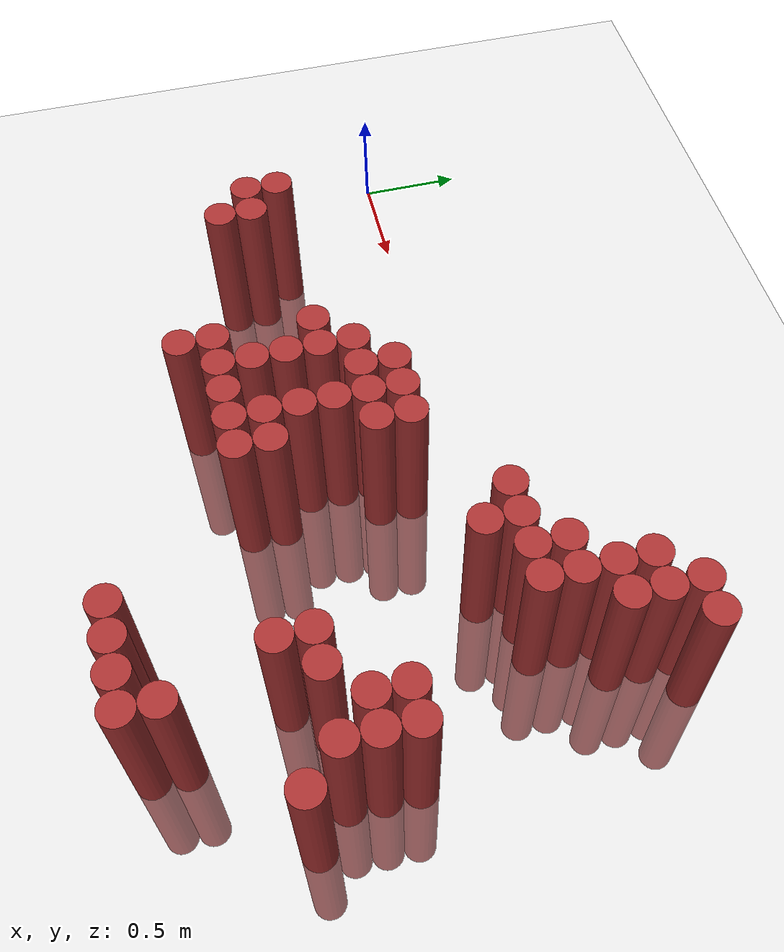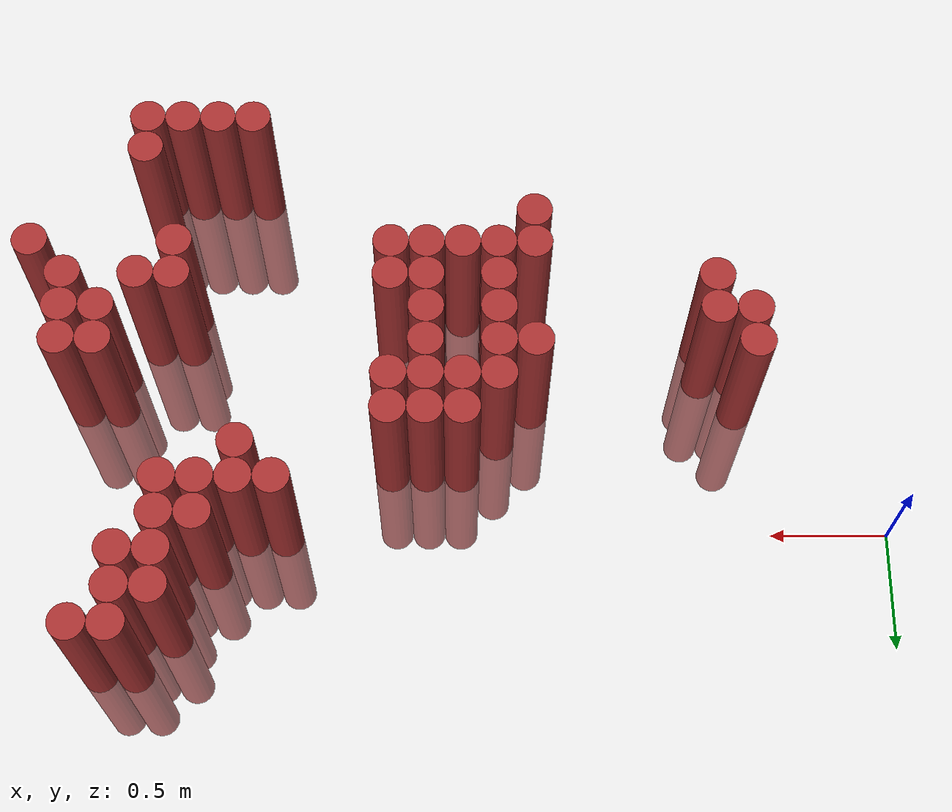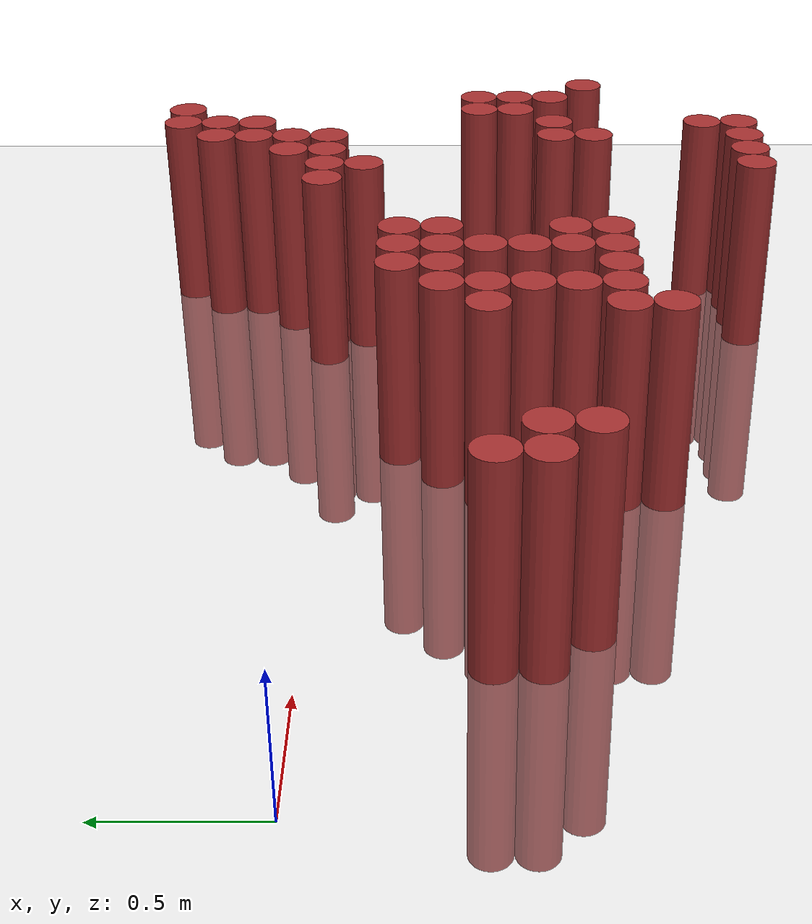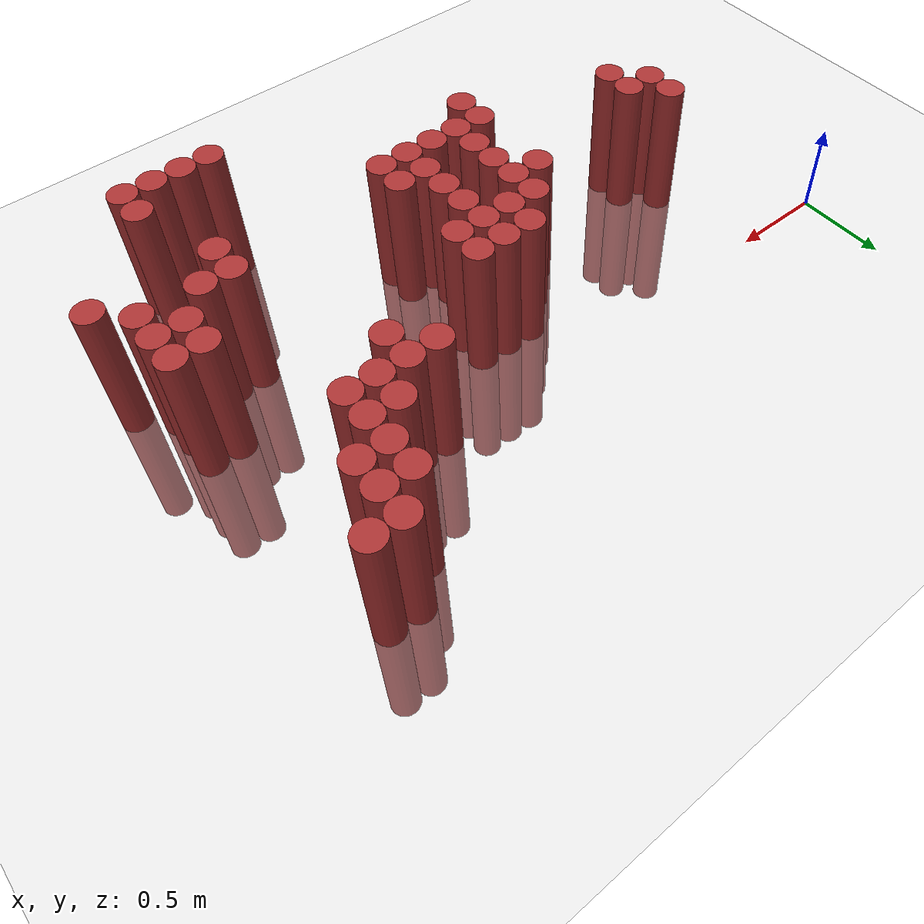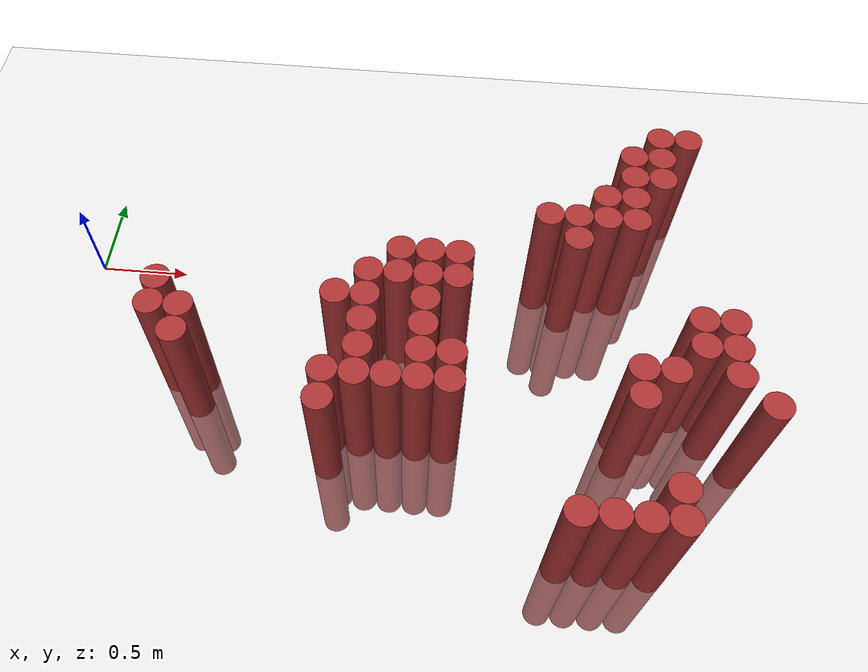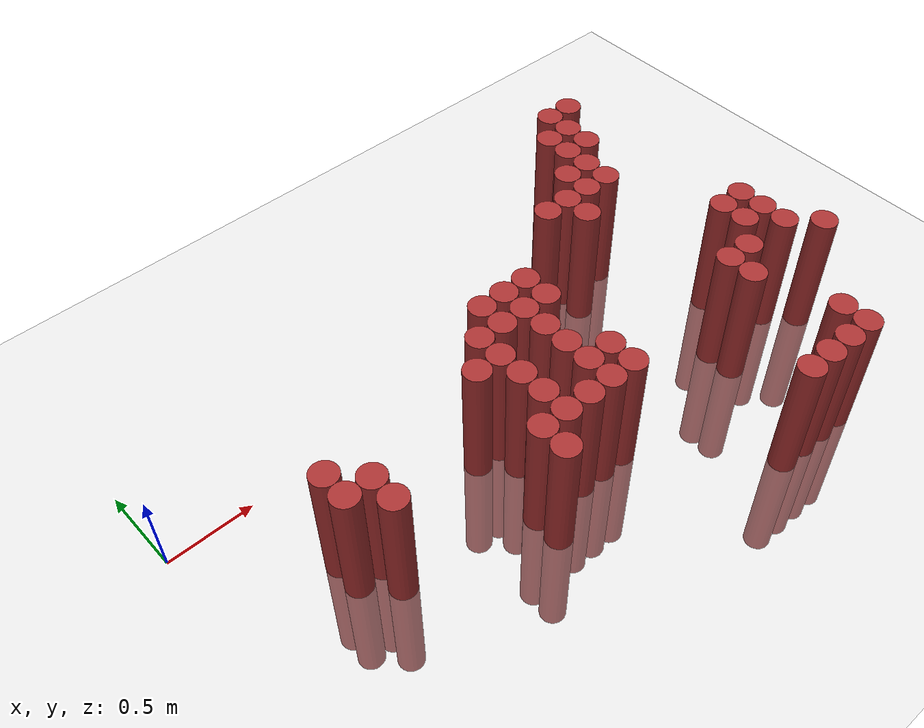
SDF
<sdf version="1.6">
 <world name="default">
  <model name="ground_plane">
   <static>1</static>
   <link name="link">
    <collision name="collision">
     <geometry><plane><normal>0 0 1</normal><size>100 100</size></plane></geometry>
     <surface><friction><ode><mu>100</mu><mu2>50</mu2></ode></friction></surface>
    </collision>
    <visual name="visual">
     <cast_shadows>0</cast_shadows>
     <geometry><plane><normal>0 0 1</normal><size>100 100</size></plane></geometry>
     <material>
      <script><uri>file://media/materials/scripts/gazebo.material</uri><name>Gazebo/Grey</name></script>
     </material>
    </visual>
   </link>
  </model>
  <model name="unit_cylinder_394">
   <static>1</static>
   <pose>0.625000 -0.725000 0.000000 0.000000 0.000000 0.000000</pose>
   <link name="link">
    <inertial>
     <mass>1</mass>
     <inertia><ixx>0.145833</ixx><ixy>0</ixy><ixz>0</ixz><iyy>0.145833</iyy><iyz>0</iyz><izz>0.125</izz></inertia>
    </inertial>
    <collision name="collision">
     <geometry><cylinder><radius>0.075000</radius><length>1.5</length></cylinder></geometry>
    </collision>
    <visual name="visual">
     <geometry><cylinder><radius>0.075000</radius><length>1.5</length></cylinder></geometry>
     <material>
      <ambient>0.648000 0.192000 0.192000 1</ambient>
      <diffuse>0.648000 0.192000 0.192000 1</diffuse>
     </material>
     <material>
      <script><name>Gazebo/Grey</name><uri>file://media/materials/scripts/gazebo.material</uri></script>
     </material>
    </visual>
   </link>
  </model>
  <model name="unit_cylinder_395">
   <static>1</static>
   <pose>0.625000 -0.575000 0.000000 0.000000 0.000000 0.000000</pose>
   <link name="link">
    <inertial>
     <mass>1</mass>
     <inertia><ixx>0.145833</ixx><ixy>0</ixy><ixz>0</ixz><iyy>0.145833</iyy><iyz>0</iyz><izz>0.125</izz></inertia>
    </inertial>
    <collision name="collision">
     <geometry><cylinder><radius>0.075000</radius><length>1.5</length></cylinder></geometry>
    </collision>
    <visual name="visual">
     <geometry><cylinder><radius>0.075000</radius><length>1.5</length></cylinder></geometry>
     <material>
      <ambient>0.648000 0.192000 0.192000 1</ambient>
      <diffuse>0.648000 0.192000 0.192000 1</diffuse>
     </material>
     <material>
      <script><name>Gazebo/Grey</name><uri>file://media/materials/scripts/gazebo.material</uri></script>
     </material>
    </visual>
   </link>
  </model>
  <model name="unit_cylinder_396">
   <static>1</static>
   <pose>0.775000 -0.875000 0.000000 0.000000 0.000000 0.000000</pose>
   <link name="link">
    <inertial>
     <mass>1</mass>
     <inertia><ixx>0.145833</ixx><ixy>0</ixy><ixz>0</ixz><iyy>0.145833</iyy><iyz>0</iyz><izz>0.125</izz></inertia>
    </inertial>
    <collision name="collision">
     <geometry><cylinder><radius>0.075000</radius><length>1.5</length></cylinder></geometry>
    </collision>
    <visual name="visual">
     <geometry><cylinder><radius>0.075000</radius><length>1.5</length></cylinder></geometry>
     <material>
      <ambient>0.648000 0.192000 0.192000 1</ambient>
      <diffuse>0.648000 0.192000 0.192000 1</diffuse>
     </material>
     <material>
      <script><name>Gazebo/Grey</name><uri>file://media/materials/scripts/gazebo.material</uri></script>
     </material>
    </visual>
   </link>
  </model>
  <model name="unit_cylinder_397">
   <static>1</static>
   <pose>0.775000 -0.725000 0.000000 0.000000 0.000000 0.000000</pose>
   <link name="link">
    <inertial>
     <mass>1</mass>
     <inertia><ixx>0.145833</ixx><ixy>0</ixy><ixz>0</ixz><iyy>0.145833</iyy><iyz>0</iyz><izz>0.125</izz></inertia>
    </inertial>
    <collision name="collision">
     <geometry><cylinder><radius>0.075000</radius><length>1.5</length></cylinder></geometry>
    </collision>
    <visual name="visual">
     <geometry><cylinder><radius>0.075000</radius><length>1.5</length></cylinder></geometry>
     <material>
      <ambient>0.648000 0.192000 0.192000 1</ambient>
      <diffuse>0.648000 0.192000 0.192000 1</diffuse>
     </material>
     <material>
      <script><name>Gazebo/Grey</name><uri>file://media/materials/scripts/gazebo.material</uri></script>
     </material>
    </visual>
   </link>
  </model>
  <model name="unit_cylinder_422">
   <static>1</static>
   <pose>1.525000 -1.175000 0.000000 0.000000 0.000000 0.000000</pose>
   <link name="link">
    <inertial>
     <mass>1</mass>
     <inertia><ixx>0.145833</ixx><ixy>0</ixy><ixz>0</ixz><iyy>0.145833</iyy><iyz>0</iyz><izz>0.125</izz></inertia>
    </inertial>
    <collision name="collision">
     <geometry><cylinder><radius>0.075000</radius><length>1.5</length></cylinder></geometry>
    </collision>
    <visual name="visual">
     <geometry><cylinder><radius>0.075000</radius><length>1.5</length></cylinder></geometry>
     <material>
      <ambient>0.648000 0.192000 0.192000 1</ambient>
      <diffuse>0.648000 0.192000 0.192000 1</diffuse>
     </material>
     <material>
      <script><name>Gazebo/Grey</name><uri>file://media/materials/scripts/gazebo.material</uri></script>
     </material>
    </visual>
   </link>
  </model>
  <model name="unit_cylinder_423">
   <static>1</static>
   <pose>1.525000 -1.025000 0.000000 0.000000 0.000000 0.000000</pose>
   <link name="link">
    <inertial>
     <mass>1</mass>
     <inertia><ixx>0.145833</ixx><ixy>0</ixy><ixz>0</ixz><iyy>0.145833</iyy><iyz>0</iyz><izz>0.125</izz></inertia>
    </inertial>
    <collision name="collision">
     <geometry><cylinder><radius>0.075000</radius><length>1.5</length></cylinder></geometry>
    </collision>
    <visual name="visual">
     <geometry><cylinder><radius>0.075000</radius><length>1.5</length></cylinder></geometry>
     <material>
      <ambient>0.648000 0.192000 0.192000 1</ambient>
      <diffuse>0.648000 0.192000 0.192000 1</diffuse>
     </material>
     <material>
      <script><name>Gazebo/Grey</name><uri>file://media/materials/scripts/gazebo.material</uri></script>
     </material>
    </visual>
   </link>
  </model>
  <model name="unit_cylinder_424">
   <static>1</static>
   <pose>1.525000 -0.575000 0.000000 0.000000 0.000000 0.000000</pose>
   <link name="link">
    <inertial>
     <mass>1</mass>
     <inertia><ixx>0.145833</ixx><ixy>0</ixy><ixz>0</ixz><iyy>0.145833</iyy><iyz>0</iyz><izz>0.125</izz></inertia>
    </inertial>
    <collision name="collision">
     <geometry><cylinder><radius>0.075000</radius><length>1.5</length></cylinder></geometry>
    </collision>
    <visual name="visual">
     <geometry><cylinder><radius>0.075000</radius><length>1.5</length></cylinder></geometry>
     <material>
      <ambient>0.648000 0.192000 0.192000 1</ambient>
      <diffuse>0.648000 0.192000 0.192000 1</diffuse>
     </material>
     <material>
      <script><name>Gazebo/Grey</name><uri>file://media/materials/scripts/gazebo.material</uri></script>
     </material>
    </visual>
   </link>
  </model>
  <model name="unit_cylinder_427">
   <static>1</static>
   <pose>1.675000 -1.025000 0.000000 0.000000 0.000000 0.000000</pose>
   <link name="link">
    <inertial>
     <mass>1</mass>
     <inertia><ixx>0.145833</ixx><ixy>0</ixy><ixz>0</ixz><iyy>0.145833</iyy><iyz>0</iyz><izz>0.125</izz></inertia>
    </inertial>
    <collision name="collision">
     <geometry><cylinder><radius>0.075000</radius><length>1.5</length></cylinder></geometry>
    </collision>
    <visual name="visual">
     <geometry><cylinder><radius>0.075000</radius><length>1.5</length></cylinder></geometry>
     <material>
      <ambient>0.648000 0.192000 0.192000 1</ambient>
      <diffuse>0.648000 0.192000 0.192000 1</diffuse>
     </material>
     <material>
      <script><name>Gazebo/Grey</name><uri>file://media/materials/scripts/gazebo.material</uri></script>
     </material>
    </visual>
   </link>
  </model>
  <model name="unit_cylinder_428">
   <static>1</static>
   <pose>1.675000 -0.875000 0.000000 0.000000 0.000000 0.000000</pose>
   <link name="link">
    <inertial>
     <mass>1</mass>
     <inertia><ixx>0.145833</ixx><ixy>0</ixy><ixz>0</ixz><iyy>0.145833</iyy><iyz>0</iyz><izz>0.125</izz></inertia>
    </inertial>
    <collision name="collision">
     <geometry><cylinder><radius>0.075000</radius><length>1.5</length></cylinder></geometry>
    </collision>
    <visual name="visual">
     <geometry><cylinder><radius>0.075000</radius><length>1.5</length></cylinder></geometry>
     <material>
      <ambient>0.648000 0.192000 0.192000 1</ambient>
      <diffuse>0.648000 0.192000 0.192000 1</diffuse>
     </material>
     <material>
      <script><name>Gazebo/Grey</name><uri>file://media/materials/scripts/gazebo.material</uri></script>
     </material>
    </visual>
   </link>
  </model>
  <model name="unit_cylinder_429">
   <static>1</static>
   <pose>1.675000 -0.725000 0.000000 0.000000 0.000000 0.000000</pose>
   <link name="link">
    <inertial>
     <mass>1</mass>
     <inertia><ixx>0.145833</ixx><ixy>0</ixy><ixz>0</ixz><iyy>0.145833</iyy><iyz>0</iyz><izz>0.125</izz></inertia>
    </inertial>
    <collision name="collision">
     <geometry><cylinder><radius>0.075000</radius><length>1.5</length></cylinder></geometry>
    </collision>
    <visual name="visual">
     <geometry><cylinder><radius>0.075000</radius><length>1.5</length></cylinder></geometry>
     <material>
      <ambient>0.648000 0.192000 0.192000 1</ambient>
      <diffuse>0.648000 0.192000 0.192000 1</diffuse>
     </material>
     <material>
      <script><name>Gazebo/Grey</name><uri>file://media/materials/scripts/gazebo.material</uri></script>
     </material>
    </visual>
   </link>
  </model>
  <model name="unit_cylinder_430">
   <static>1</static>
   <pose>1.675000 -0.575000 0.000000 0.000000 0.000000 0.000000</pose>
   <link name="link">
    <inertial>
     <mass>1</mass>
     <inertia><ixx>0.145833</ixx><ixy>0</ixy><ixz>0</ixz><iyy>0.145833</iyy><iyz>0</iyz><izz>0.125</izz></inertia>
    </inertial>
    <collision name="collision">
     <geometry><cylinder><radius>0.075000</radius><length>1.5</length></cylinder></geometry>
    </collision>
    <visual name="visual">
     <geometry><cylinder><radius>0.075000</radius><length>1.5</length></cylinder></geometry>
     <material>
      <ambient>0.648000 0.192000 0.192000 1</ambient>
      <diffuse>0.648000 0.192000 0.192000 1</diffuse>
     </material>
     <material>
      <script><name>Gazebo/Grey</name><uri>file://media/materials/scripts/gazebo.material</uri></script>
     </material>
    </visual>
   </link>
  </model>
  <model name="unit_cylinder_431">
   <static>1</static>
   <pose>1.675000 -0.425000 0.000000 0.000000 0.000000 0.000000</pose>
   <link name="link">
    <inertial>
     <mass>1</mass>
     <inertia><ixx>0.145833</ixx><ixy>0</ixy><ixz>0</ixz><iyy>0.145833</iyy><iyz>0</iyz><izz>0.125</izz></inertia>
    </inertial>
    <collision name="collision">
     <geometry><cylinder><radius>0.075000</radius><length>1.5</length></cylinder></geometry>
    </collision>
    <visual name="visual">
     <geometry><cylinder><radius>0.075000</radius><length>1.5</length></cylinder></geometry>
     <material>
      <ambient>0.648000 0.192000 0.192000 1</ambient>
      <diffuse>0.648000 0.192000 0.192000 1</diffuse>
     </material>
     <material>
      <script><name>Gazebo/Grey</name><uri>file://media/materials/scripts/gazebo.material</uri></script>
     </material>
    </visual>
   </link>
  </model>
  <model name="unit_cylinder_433">
   <static>1</static>
   <pose>1.825000 -1.025000 0.000000 0.000000 0.000000 0.000000</pose>
   <link name="link">
    <inertial>
     <mass>1</mass>
     <inertia><ixx>0.145833</ixx><ixy>0</ixy><ixz>0</ixz><iyy>0.145833</iyy><iyz>0</iyz><izz>0.125</izz></inertia>
    </inertial>
    <collision name="collision">
     <geometry><cylinder><radius>0.075000</radius><length>1.5</length></cylinder></geometry>
    </collision>
    <visual name="visual">
     <geometry><cylinder><radius>0.075000</radius><length>1.5</length></cylinder></geometry>
     <material>
      <ambient>0.648000 0.192000 0.192000 1</ambient>
      <diffuse>0.648000 0.192000 0.192000 1</diffuse>
     </material>
     <material>
      <script><name>Gazebo/Grey</name><uri>file://media/materials/scripts/gazebo.material</uri></script>
     </material>
    </visual>
   </link>
  </model>
  <model name="unit_cylinder_434">
   <static>1</static>
   <pose>1.825000 -0.425000 0.000000 0.000000 0.000000 0.000000</pose>
   <link name="link">
    <inertial>
     <mass>1</mass>
     <inertia><ixx>0.145833</ixx><ixy>0</ixy><ixz>0</ixz><iyy>0.145833</iyy><iyz>0</iyz><izz>0.125</izz></inertia>
    </inertial>
    <collision name="collision">
     <geometry><cylinder><radius>0.075000</radius><length>1.5</length></cylinder></geometry>
    </collision>
    <visual name="visual">
     <geometry><cylinder><radius>0.075000</radius><length>1.5</length></cylinder></geometry>
     <material>
      <ambient>0.648000 0.192000 0.192000 1</ambient>
      <diffuse>0.648000 0.192000 0.192000 1</diffuse>
     </material>
     <material>
      <script><name>Gazebo/Grey</name><uri>file://media/materials/scripts/gazebo.material</uri></script>
     </material>
    </visual>
   </link>
  </model>
  <model name="unit_cylinder_435">
   <static>1</static>
   <pose>1.825000 -0.275000 0.000000 0.000000 0.000000 0.000000</pose>
   <link name="link">
    <inertial>
     <mass>1</mass>
     <inertia><ixx>0.145833</ixx><ixy>0</ixy><ixz>0</ixz><iyy>0.145833</iyy><iyz>0</iyz><izz>0.125</izz></inertia>
    </inertial>
    <collision name="collision">
     <geometry><cylinder><radius>0.075000</radius><length>1.5</length></cylinder></geometry>
    </collision>
    <visual name="visual">
     <geometry><cylinder><radius>0.075000</radius><length>1.5</length></cylinder></geometry>
     <material>
      <ambient>0.648000 0.192000 0.192000 1</ambient>
      <diffuse>0.648000 0.192000 0.192000 1</diffuse>
     </material>
     <material>
      <script><name>Gazebo/Grey</name><uri>file://media/materials/scripts/gazebo.material</uri></script>
     </material>
    </visual>
   </link>
  </model>
  <model name="unit_cylinder_438">
   <static>1</static>
   <pose>1.975000 -1.025000 0.000000 0.000000 0.000000 0.000000</pose>
   <link name="link">
    <inertial>
     <mass>1</mass>
     <inertia><ixx>0.145833</ixx><ixy>0</ixy><ixz>0</ixz><iyy>0.145833</iyy><iyz>0</iyz><izz>0.125</izz></inertia>
    </inertial>
    <collision name="collision">
     <geometry><cylinder><radius>0.075000</radius><length>1.5</length></cylinder></geometry>
    </collision>
    <visual name="visual">
     <geometry><cylinder><radius>0.075000</radius><length>1.5</length></cylinder></geometry>
     <material>
      <ambient>0.648000 0.192000 0.192000 1</ambient>
      <diffuse>0.648000 0.192000 0.192000 1</diffuse>
     </material>
     <material>
      <script><name>Gazebo/Grey</name><uri>file://media/materials/scripts/gazebo.material</uri></script>
     </material>
    </visual>
   </link>
  </model>
  <model name="unit_cylinder_439">
   <static>1</static>
   <pose>1.975000 -0.875000 0.000000 0.000000 0.000000 0.000000</pose>
   <link name="link">
    <inertial>
     <mass>1</mass>
     <inertia><ixx>0.145833</ixx><ixy>0</ixy><ixz>0</ixz><iyy>0.145833</iyy><iyz>0</iyz><izz>0.125</izz></inertia>
    </inertial>
    <collision name="collision">
     <geometry><cylinder><radius>0.075000</radius><length>1.5</length></cylinder></geometry>
    </collision>
    <visual name="visual">
     <geometry><cylinder><radius>0.075000</radius><length>1.5</length></cylinder></geometry>
     <material>
      <ambient>0.648000 0.192000 0.192000 1</ambient>
      <diffuse>0.648000 0.192000 0.192000 1</diffuse>
     </material>
     <material>
      <script><name>Gazebo/Grey</name><uri>file://media/materials/scripts/gazebo.material</uri></script>
     </material>
    </visual>
   </link>
  </model>
  <model name="unit_cylinder_440">
   <static>1</static>
   <pose>1.975000 -0.725000 0.000000 0.000000 0.000000 0.000000</pose>
   <link name="link">
    <inertial>
     <mass>1</mass>
     <inertia><ixx>0.145833</ixx><ixy>0</ixy><ixz>0</ixz><iyy>0.145833</iyy><iyz>0</iyz><izz>0.125</izz></inertia>
    </inertial>
    <collision name="collision">
     <geometry><cylinder><radius>0.075000</radius><length>1.5</length></cylinder></geometry>
    </collision>
    <visual name="visual">
     <geometry><cylinder><radius>0.075000</radius><length>1.5</length></cylinder></geometry>
     <material>
      <ambient>0.648000 0.192000 0.192000 1</ambient>
      <diffuse>0.648000 0.192000 0.192000 1</diffuse>
     </material>
     <material>
      <script><name>Gazebo/Grey</name><uri>file://media/materials/scripts/gazebo.material</uri></script>
     </material>
    </visual>
   </link>
  </model>
  <model name="unit_cylinder_441">
   <static>1</static>
   <pose>1.975000 -0.575000 0.000000 0.000000 0.000000 0.000000</pose>
   <link name="link">
    <inertial>
     <mass>1</mass>
     <inertia><ixx>0.145833</ixx><ixy>0</ixy><ixz>0</ixz><iyy>0.145833</iyy><iyz>0</iyz><izz>0.125</izz></inertia>
    </inertial>
    <collision name="collision">
     <geometry><cylinder><radius>0.075000</radius><length>1.5</length></cylinder></geometry>
    </collision>
    <visual name="visual">
     <geometry><cylinder><radius>0.075000</radius><length>1.5</length></cylinder></geometry>
     <material>
      <ambient>0.648000 0.192000 0.192000 1</ambient>
      <diffuse>0.648000 0.192000 0.192000 1</diffuse>
     </material>
     <material>
      <script><name>Gazebo/Grey</name><uri>file://media/materials/scripts/gazebo.material</uri></script>
     </material>
    </visual>
   </link>
  </model>
  <model name="unit_cylinder_442">
   <static>1</static>
   <pose>1.975000 -0.425000 0.000000 0.000000 0.000000 0.000000</pose>
   <link name="link">
    <inertial>
     <mass>1</mass>
     <inertia><ixx>0.145833</ixx><ixy>0</ixy><ixz>0</ixz><iyy>0.145833</iyy><iyz>0</iyz><izz>0.125</izz></inertia>
    </inertial>
    <collision name="collision">
     <geometry><cylinder><radius>0.075000</radius><length>1.5</length></cylinder></geometry>
    </collision>
    <visual name="visual">
     <geometry><cylinder><radius>0.075000</radius><length>1.5</length></cylinder></geometry>
     <material>
      <ambient>0.648000 0.192000 0.192000 1</ambient>
      <diffuse>0.648000 0.192000 0.192000 1</diffuse>
     </material>
     <material>
      <script><name>Gazebo/Grey</name><uri>file://media/materials/scripts/gazebo.material</uri></script>
     </material>
    </visual>
   </link>
  </model>
  <model name="unit_cylinder_443">
   <static>1</static>
   <pose>1.975000 -0.275000 0.000000 0.000000 0.000000 0.000000</pose>
   <link name="link">
    <inertial>
     <mass>1</mass>
     <inertia><ixx>0.145833</ixx><ixy>0</ixy><ixz>0</ixz><iyy>0.145833</iyy><iyz>0</iyz><izz>0.125</izz></inertia>
    </inertial>
    <collision name="collision">
     <geometry><cylinder><radius>0.075000</radius><length>1.5</length></cylinder></geometry>
    </collision>
    <visual name="visual">
     <geometry><cylinder><radius>0.075000</radius><length>1.5</length></cylinder></geometry>
     <material>
      <ambient>0.648000 0.192000 0.192000 1</ambient>
      <diffuse>0.648000 0.192000 0.192000 1</diffuse>
     </material>
     <material>
      <script><name>Gazebo/Grey</name><uri>file://media/materials/scripts/gazebo.material</uri></script>
     </material>
    </visual>
   </link>
  </model>
  <model name="unit_cylinder_448">
   <static>1</static>
   <pose>2.125000 -1.025000 0.000000 0.000000 0.000000 0.000000</pose>
   <link name="link">
    <inertial>
     <mass>1</mass>
     <inertia><ixx>0.145833</ixx><ixy>0</ixy><ixz>0</ixz><iyy>0.145833</iyy><iyz>0</iyz><izz>0.125</izz></inertia>
    </inertial>
    <collision name="collision">
     <geometry><cylinder><radius>0.075000</radius><length>1.5</length></cylinder></geometry>
    </collision>
    <visual name="visual">
     <geometry><cylinder><radius>0.075000</radius><length>1.5</length></cylinder></geometry>
     <material>
      <ambient>0.648000 0.192000 0.192000 1</ambient>
      <diffuse>0.648000 0.192000 0.192000 1</diffuse>
     </material>
     <material>
      <script><name>Gazebo/Grey</name><uri>file://media/materials/scripts/gazebo.material</uri></script>
     </material>
    </visual>
   </link>
  </model>
  <model name="unit_cylinder_449">
   <static>1</static>
   <pose>2.125000 -0.875000 0.000000 0.000000 0.000000 0.000000</pose>
   <link name="link">
    <inertial>
     <mass>1</mass>
     <inertia><ixx>0.145833</ixx><ixy>0</ixy><ixz>0</ixz><iyy>0.145833</iyy><iyz>0</iyz><izz>0.125</izz></inertia>
    </inertial>
    <collision name="collision">
     <geometry><cylinder><radius>0.075000</radius><length>1.5</length></cylinder></geometry>
    </collision>
    <visual name="visual">
     <geometry><cylinder><radius>0.075000</radius><length>1.5</length></cylinder></geometry>
     <material>
      <ambient>0.648000 0.192000 0.192000 1</ambient>
      <diffuse>0.648000 0.192000 0.192000 1</diffuse>
     </material>
     <material>
      <script><name>Gazebo/Grey</name><uri>file://media/materials/scripts/gazebo.material</uri></script>
     </material>
    </visual>
   </link>
  </model>
  <model name="unit_cylinder_450">
   <static>1</static>
   <pose>2.125000 -0.425000 0.000000 0.000000 0.000000 0.000000</pose>
   <link name="link">
    <inertial>
     <mass>1</mass>
     <inertia><ixx>0.145833</ixx><ixy>0</ixy><ixz>0</ixz><iyy>0.145833</iyy><iyz>0</iyz><izz>0.125</izz></inertia>
    </inertial>
    <collision name="collision">
     <geometry><cylinder><radius>0.075000</radius><length>1.5</length></cylinder></geometry>
    </collision>
    <visual name="visual">
     <geometry><cylinder><radius>0.075000</radius><length>1.5</length></cylinder></geometry>
     <material>
      <ambient>0.648000 0.192000 0.192000 1</ambient>
      <diffuse>0.648000 0.192000 0.192000 1</diffuse>
     </material>
     <material>
      <script><name>Gazebo/Grey</name><uri>file://media/materials/scripts/gazebo.material</uri></script>
     </material>
    </visual>
   </link>
  </model>
  <model name="unit_cylinder_451">
   <static>1</static>
   <pose>2.125000 -0.275000 0.000000 0.000000 0.000000 0.000000</pose>
   <link name="link">
    <inertial>
     <mass>1</mass>
     <inertia><ixx>0.145833</ixx><ixy>0</ixy><ixz>0</ixz><iyy>0.145833</iyy><iyz>0</iyz><izz>0.125</izz></inertia>
    </inertial>
    <collision name="collision">
     <geometry><cylinder><radius>0.075000</radius><length>1.5</length></cylinder></geometry>
    </collision>
    <visual name="visual">
     <geometry><cylinder><radius>0.075000</radius><length>1.5</length></cylinder></geometry>
     <material>
      <ambient>0.648000 0.192000 0.192000 1</ambient>
      <diffuse>0.648000 0.192000 0.192000 1</diffuse>
     </material>
     <material>
      <script><name>Gazebo/Grey</name><uri>file://media/materials/scripts/gazebo.material</uri></script>
     </material>
    </visual>
   </link>
  </model>
  <model name="unit_cylinder_464">
   <static>1</static>
   <pose>2.575000 0.025000 0.000000 0.000000 0.000000 0.000000</pose>
   <link name="link">
    <inertial>
     <mass>1</mass>
     <inertia><ixx>0.145833</ixx><ixy>0</ixy><ixz>0</ixz><iyy>0.145833</iyy><iyz>0</iyz><izz>0.125</izz></inertia>
    </inertial>
    <collision name="collision">
     <geometry><cylinder><radius>0.075000</radius><length>1.5</length></cylinder></geometry>
    </collision>
    <visual name="visual">
     <geometry><cylinder><radius>0.075000</radius><length>1.5</length></cylinder></geometry>
     <material>
      <ambient>0.648000 0.192000 0.192000 1</ambient>
      <diffuse>0.648000 0.192000 0.192000 1</diffuse>
     </material>
     <material>
      <script><name>Gazebo/Grey</name><uri>file://media/materials/scripts/gazebo.material</uri></script>
     </material>
    </visual>
   </link>
  </model>
  <model name="unit_cylinder_473">
   <static>1</static>
   <pose>2.725000 -1.625000 0.000000 0.000000 0.000000 0.000000</pose>
   <link name="link">
    <inertial>
     <mass>1</mass>
     <inertia><ixx>0.145833</ixx><ixy>0</ixy><ixz>0</ixz><iyy>0.145833</iyy><iyz>0</iyz><izz>0.125</izz></inertia>
    </inertial>
    <collision name="collision">
     <geometry><cylinder><radius>0.075000</radius><length>1.5</length></cylinder></geometry>
    </collision>
    <visual name="visual">
     <geometry><cylinder><radius>0.075000</radius><length>1.5</length></cylinder></geometry>
     <material>
      <ambient>0.648000 0.192000 0.192000 1</ambient>
      <diffuse>0.648000 0.192000 0.192000 1</diffuse>
     </material>
     <material>
      <script><name>Gazebo/Grey</name><uri>file://media/materials/scripts/gazebo.material</uri></script>
     </material>
    </visual>
   </link>
  </model>
  <model name="unit_cylinder_474">
   <static>1</static>
   <pose>2.725000 -0.125000 0.000000 0.000000 0.000000 0.000000</pose>
   <link name="link">
    <inertial>
     <mass>1</mass>
     <inertia><ixx>0.145833</ixx><ixy>0</ixy><ixz>0</ixz><iyy>0.145833</iyy><iyz>0</iyz><izz>0.125</izz></inertia>
    </inertial>
    <collision name="collision">
     <geometry><cylinder><radius>0.075000</radius><length>1.5</length></cylinder></geometry>
    </collision>
    <visual name="visual">
     <geometry><cylinder><radius>0.075000</radius><length>1.5</length></cylinder></geometry>
     <material>
      <ambient>0.648000 0.192000 0.192000 1</ambient>
      <diffuse>0.648000 0.192000 0.192000 1</diffuse>
     </material>
     <material>
      <script><name>Gazebo/Grey</name><uri>file://media/materials/scripts/gazebo.material</uri></script>
     </material>
    </visual>
   </link>
  </model>
  <model name="unit_cylinder_475">
   <static>1</static>
   <pose>2.725000 0.025000 0.000000 0.000000 0.000000 0.000000</pose>
   <link name="link">
    <inertial>
     <mass>1</mass>
     <inertia><ixx>0.145833</ixx><ixy>0</ixy><ixz>0</ixz><iyy>0.145833</iyy><iyz>0</iyz><izz>0.125</izz></inertia>
    </inertial>
    <collision name="collision">
     <geometry><cylinder><radius>0.075000</radius><length>1.5</length></cylinder></geometry>
    </collision>
    <visual name="visual">
     <geometry><cylinder><radius>0.075000</radius><length>1.5</length></cylinder></geometry>
     <material>
      <ambient>0.648000 0.192000 0.192000 1</ambient>
      <diffuse>0.648000 0.192000 0.192000 1</diffuse>
     </material>
     <material>
      <script><name>Gazebo/Grey</name><uri>file://media/materials/scripts/gazebo.material</uri></script>
     </material>
    </visual>
   </link>
  </model>
  <model name="unit_cylinder_481">
   <static>1</static>
   <pose>2.875000 -1.625000 0.000000 0.000000 0.000000 0.000000</pose>
   <link name="link">
    <inertial>
     <mass>1</mass>
     <inertia><ixx>0.145833</ixx><ixy>0</ixy><ixz>0</ixz><iyy>0.145833</iyy><iyz>0</iyz><izz>0.125</izz></inertia>
    </inertial>
    <collision name="collision">
     <geometry><cylinder><radius>0.075000</radius><length>1.5</length></cylinder></geometry>
    </collision>
    <visual name="visual">
     <geometry><cylinder><radius>0.075000</radius><length>1.5</length></cylinder></geometry>
     <material>
      <ambient>0.648000 0.192000 0.192000 1</ambient>
      <diffuse>0.648000 0.192000 0.192000 1</diffuse>
     </material>
     <material>
      <script><name>Gazebo/Grey</name><uri>file://media/materials/scripts/gazebo.material</uri></script>
     </material>
    </visual>
   </link>
  </model>
  <model name="unit_cylinder_482">
   <static>1</static>
   <pose>2.875000 0.025000 0.000000 0.000000 0.000000 0.000000</pose>
   <link name="link">
    <inertial>
     <mass>1</mass>
     <inertia><ixx>0.145833</ixx><ixy>0</ixy><ixz>0</ixz><iyy>0.145833</iyy><iyz>0</iyz><izz>0.125</izz></inertia>
    </inertial>
    <collision name="collision">
     <geometry><cylinder><radius>0.075000</radius><length>1.5</length></cylinder></geometry>
    </collision>
    <visual name="visual">
     <geometry><cylinder><radius>0.075000</radius><length>1.5</length></cylinder></geometry>
     <material>
      <ambient>0.648000 0.192000 0.192000 1</ambient>
      <diffuse>0.648000 0.192000 0.192000 1</diffuse>
     </material>
     <material>
      <script><name>Gazebo/Grey</name><uri>file://media/materials/scripts/gazebo.material</uri></script>
     </material>
    </visual>
   </link>
  </model>
  <model name="unit_cylinder_483">
   <static>1</static>
   <pose>2.875000 0.175000 0.000000 0.000000 0.000000 0.000000</pose>
   <link name="link">
    <inertial>
     <mass>1</mass>
     <inertia><ixx>0.145833</ixx><ixy>0</ixy><ixz>0</ixz><iyy>0.145833</iyy><iyz>0</iyz><izz>0.125</izz></inertia>
    </inertial>
    <collision name="collision">
     <geometry><cylinder><radius>0.075000</radius><length>1.5</length></cylinder></geometry>
    </collision>
    <visual name="visual">
     <geometry><cylinder><radius>0.075000</radius><length>1.5</length></cylinder></geometry>
     <material>
      <ambient>0.648000 0.192000 0.192000 1</ambient>
      <diffuse>0.648000 0.192000 0.192000 1</diffuse>
     </material>
     <material>
      <script><name>Gazebo/Grey</name><uri>file://media/materials/scripts/gazebo.material</uri></script>
     </material>
    </visual>
   </link>
  </model>
  <model name="unit_cylinder_495">
   <static>1</static>
   <pose>3.025000 -1.625000 0.000000 0.000000 0.000000 0.000000</pose>
   <link name="link">
    <inertial>
     <mass>1</mass>
     <inertia><ixx>0.145833</ixx><ixy>0</ixy><ixz>0</ixz><iyy>0.145833</iyy><iyz>0</iyz><izz>0.125</izz></inertia>
    </inertial>
    <collision name="collision">
     <geometry><cylinder><radius>0.075000</radius><length>1.5</length></cylinder></geometry>
    </collision>
    <visual name="visual">
     <geometry><cylinder><radius>0.075000</radius><length>1.5</length></cylinder></geometry>
     <material>
      <ambient>0.648000 0.192000 0.192000 1</ambient>
      <diffuse>0.648000 0.192000 0.192000 1</diffuse>
     </material>
     <material>
      <script><name>Gazebo/Grey</name><uri>file://media/materials/scripts/gazebo.material</uri></script>
     </material>
    </visual>
   </link>
  </model>
  <model name="unit_cylinder_496">
   <static>1</static>
   <pose>3.025000 -1.025000 0.000000 0.000000 0.000000 0.000000</pose>
   <link name="link">
    <inertial>
     <mass>1</mass>
     <inertia><ixx>0.145833</ixx><ixy>0</ixy><ixz>0</ixz><iyy>0.145833</iyy><iyz>0</iyz><izz>0.125</izz></inertia>
    </inertial>
    <collision name="collision">
     <geometry><cylinder><radius>0.075000</radius><length>1.5</length></cylinder></geometry>
    </collision>
    <visual name="visual">
     <geometry><cylinder><radius>0.075000</radius><length>1.5</length></cylinder></geometry>
     <material>
      <ambient>0.648000 0.192000 0.192000 1</ambient>
      <diffuse>0.648000 0.192000 0.192000 1</diffuse>
     </material>
     <material>
      <script><name>Gazebo/Grey</name><uri>file://media/materials/scripts/gazebo.material</uri></script>
     </material>
    </visual>
   </link>
  </model>
  <model name="unit_cylinder_497">
   <static>1</static>
   <pose>3.025000 -0.875000 0.000000 0.000000 0.000000 0.000000</pose>
   <link name="link">
    <inertial>
     <mass>1</mass>
     <inertia><ixx>0.145833</ixx><ixy>0</ixy><ixz>0</ixz><iyy>0.145833</iyy><iyz>0</iyz><izz>0.125</izz></inertia>
    </inertial>
    <collision name="collision">
     <geometry><cylinder><radius>0.075000</radius><length>1.5</length></cylinder></geometry>
    </collision>
    <visual name="visual">
     <geometry><cylinder><radius>0.075000</radius><length>1.5</length></cylinder></geometry>
     <material>
      <ambient>0.648000 0.192000 0.192000 1</ambient>
      <diffuse>0.648000 0.192000 0.192000 1</diffuse>
     </material>
     <material>
      <script><name>Gazebo/Grey</name><uri>file://media/materials/scripts/gazebo.material</uri></script>
     </material>
    </visual>
   </link>
  </model>
  <model name="unit_cylinder_498">
   <static>1</static>
   <pose>3.025000 0.025000 0.000000 0.000000 0.000000 0.000000</pose>
   <link name="link">
    <inertial>
     <mass>1</mass>
     <inertia><ixx>0.145833</ixx><ixy>0</ixy><ixz>0</ixz><iyy>0.145833</iyy><iyz>0</iyz><izz>0.125</izz></inertia>
    </inertial>
    <collision name="collision">
     <geometry><cylinder><radius>0.075000</radius><length>1.5</length></cylinder></geometry>
    </collision>
    <visual name="visual">
     <geometry><cylinder><radius>0.075000</radius><length>1.5</length></cylinder></geometry>
     <material>
      <ambient>0.648000 0.192000 0.192000 1</ambient>
      <diffuse>0.648000 0.192000 0.192000 1</diffuse>
     </material>
     <material>
      <script><name>Gazebo/Grey</name><uri>file://media/materials/scripts/gazebo.material</uri></script>
     </material>
    </visual>
   </link>
  </model>
  <model name="unit_cylinder_499">
   <static>1</static>
   <pose>3.025000 0.175000 0.000000 0.000000 0.000000 0.000000</pose>
   <link name="link">
    <inertial>
     <mass>1</mass>
     <inertia><ixx>0.145833</ixx><ixy>0</ixy><ixz>0</ixz><iyy>0.145833</iyy><iyz>0</iyz><izz>0.125</izz></inertia>
    </inertial>
    <collision name="collision">
     <geometry><cylinder><radius>0.075000</radius><length>1.5</length></cylinder></geometry>
    </collision>
    <visual name="visual">
     <geometry><cylinder><radius>0.075000</radius><length>1.5</length></cylinder></geometry>
     <material>
      <ambient>0.648000 0.192000 0.192000 1</ambient>
      <diffuse>0.648000 0.192000 0.192000 1</diffuse>
     </material>
     <material>
      <script><name>Gazebo/Grey</name><uri>file://media/materials/scripts/gazebo.material</uri></script>
     </material>
    </visual>
   </link>
  </model>
  <model name="unit_cylinder_500">
   <static>1</static>
   <pose>3.025000 0.325000 0.000000 0.000000 0.000000 0.000000</pose>
   <link name="link">
    <inertial>
     <mass>1</mass>
     <inertia><ixx>0.145833</ixx><ixy>0</ixy><ixz>0</ixz><iyy>0.145833</iyy><iyz>0</iyz><izz>0.125</izz></inertia>
    </inertial>
    <collision name="collision">
     <geometry><cylinder><radius>0.075000</radius><length>1.5</length></cylinder></geometry>
    </collision>
    <visual name="visual">
     <geometry><cylinder><radius>0.075000</radius><length>1.5</length></cylinder></geometry>
     <material>
      <ambient>0.648000 0.192000 0.192000 1</ambient>
      <diffuse>0.648000 0.192000 0.192000 1</diffuse>
     </material>
     <material>
      <script><name>Gazebo/Grey</name><uri>file://media/materials/scripts/gazebo.material</uri></script>
     </material>
    </visual>
   </link>
  </model>
  <model name="unit_cylinder_501">
   <static>1</static>
   <pose>3.025000 0.475000 0.000000 0.000000 0.000000 0.000000</pose>
   <link name="link">
    <inertial>
     <mass>1</mass>
     <inertia><ixx>0.145833</ixx><ixy>0</ixy><ixz>0</ixz><iyy>0.145833</iyy><iyz>0</iyz><izz>0.125</izz></inertia>
    </inertial>
    <collision name="collision">
     <geometry><cylinder><radius>0.075000</radius><length>1.5</length></cylinder></geometry>
    </collision>
    <visual name="visual">
     <geometry><cylinder><radius>0.075000</radius><length>1.5</length></cylinder></geometry>
     <material>
      <ambient>0.648000 0.192000 0.192000 1</ambient>
      <diffuse>0.648000 0.192000 0.192000 1</diffuse>
     </material>
     <material>
      <script><name>Gazebo/Grey</name><uri>file://media/materials/scripts/gazebo.material</uri></script>
     </material>
    </visual>
   </link>
  </model>
  <model name="unit_cylinder_507">
   <static>1</static>
   <pose>3.175000 -1.625000 0.000000 0.000000 0.000000 0.000000</pose>
   <link name="link">
    <inertial>
     <mass>1</mass>
     <inertia><ixx>0.145833</ixx><ixy>0</ixy><ixz>0</ixz><iyy>0.145833</iyy><iyz>0</iyz><izz>0.125</izz></inertia>
    </inertial>
    <collision name="collision">
     <geometry><cylinder><radius>0.075000</radius><length>1.5</length></cylinder></geometry>
    </collision>
    <visual name="visual">
     <geometry><cylinder><radius>0.075000</radius><length>1.5</length></cylinder></geometry>
     <material>
      <ambient>0.648000 0.192000 0.192000 1</ambient>
      <diffuse>0.648000 0.192000 0.192000 1</diffuse>
     </material>
     <material>
      <script><name>Gazebo/Grey</name><uri>file://media/materials/scripts/gazebo.material</uri></script>
     </material>
    </visual>
   </link>
  </model>
  <model name="unit_cylinder_508">
   <static>1</static>
   <pose>3.175000 -1.475000 0.000000 0.000000 0.000000 0.000000</pose>
   <link name="link">
    <inertial>
     <mass>1</mass>
     <inertia><ixx>0.145833</ixx><ixy>0</ixy><ixz>0</ixz><iyy>0.145833</iyy><iyz>0</iyz><izz>0.125</izz></inertia>
    </inertial>
    <collision name="collision">
     <geometry><cylinder><radius>0.075000</radius><length>1.5</length></cylinder></geometry>
    </collision>
    <visual name="visual">
     <geometry><cylinder><radius>0.075000</radius><length>1.5</length></cylinder></geometry>
     <material>
      <ambient>0.648000 0.192000 0.192000 1</ambient>
      <diffuse>0.648000 0.192000 0.192000 1</diffuse>
     </material>
     <material>
      <script><name>Gazebo/Grey</name><uri>file://media/materials/scripts/gazebo.material</uri></script>
     </material>
    </visual>
   </link>
  </model>
  <model name="unit_cylinder_509">
   <static>1</static>
   <pose>3.175000 -0.875000 0.000000 0.000000 0.000000 0.000000</pose>
   <link name="link">
    <inertial>
     <mass>1</mass>
     <inertia><ixx>0.145833</ixx><ixy>0</ixy><ixz>0</ixz><iyy>0.145833</iyy><iyz>0</iyz><izz>0.125</izz></inertia>
    </inertial>
    <collision name="collision">
     <geometry><cylinder><radius>0.075000</radius><length>1.5</length></cylinder></geometry>
    </collision>
    <visual name="visual">
     <geometry><cylinder><radius>0.075000</radius><length>1.5</length></cylinder></geometry>
     <material>
      <ambient>0.648000 0.192000 0.192000 1</ambient>
      <diffuse>0.648000 0.192000 0.192000 1</diffuse>
     </material>
     <material>
      <script><name>Gazebo/Grey</name><uri>file://media/materials/scripts/gazebo.material</uri></script>
     </material>
    </visual>
   </link>
  </model>
  <model name="unit_cylinder_510">
   <static>1</static>
   <pose>3.175000 0.325000 0.000000 0.000000 0.000000 0.000000</pose>
   <link name="link">
    <inertial>
     <mass>1</mass>
     <inertia><ixx>0.145833</ixx><ixy>0</ixy><ixz>0</ixz><iyy>0.145833</iyy><iyz>0</iyz><izz>0.125</izz></inertia>
    </inertial>
    <collision name="collision">
     <geometry><cylinder><radius>0.075000</radius><length>1.5</length></cylinder></geometry>
    </collision>
    <visual name="visual">
     <geometry><cylinder><radius>0.075000</radius><length>1.5</length></cylinder></geometry>
     <material>
      <ambient>0.648000 0.192000 0.192000 1</ambient>
      <diffuse>0.648000 0.192000 0.192000 1</diffuse>
     </material>
     <material>
      <script><name>Gazebo/Grey</name><uri>file://media/materials/scripts/gazebo.material</uri></script>
     </material>
    </visual>
   </link>
  </model>
  <model name="unit_cylinder_511">
   <static>1</static>
   <pose>3.175000 0.475000 0.000000 0.000000 0.000000 0.000000</pose>
   <link name="link">
    <inertial>
     <mass>1</mass>
     <inertia><ixx>0.145833</ixx><ixy>0</ixy><ixz>0</ixz><iyy>0.145833</iyy><iyz>0</iyz><izz>0.125</izz></inertia>
    </inertial>
    <collision name="collision">
     <geometry><cylinder><radius>0.075000</radius><length>1.5</length></cylinder></geometry>
    </collision>
    <visual name="visual">
     <geometry><cylinder><radius>0.075000</radius><length>1.5</length></cylinder></geometry>
     <material>
      <ambient>0.648000 0.192000 0.192000 1</ambient>
      <diffuse>0.648000 0.192000 0.192000 1</diffuse>
     </material>
     <material>
      <script><name>Gazebo/Grey</name><uri>file://media/materials/scripts/gazebo.material</uri></script>
     </material>
    </visual>
   </link>
  </model>
  <model name="unit_cylinder_512">
   <static>1</static>
   <pose>3.175000 0.625000 0.000000 0.000000 0.000000 0.000000</pose>
   <link name="link">
    <inertial>
     <mass>1</mass>
     <inertia><ixx>0.145833</ixx><ixy>0</ixy><ixz>0</ixz><iyy>0.145833</iyy><iyz>0</iyz><izz>0.125</izz></inertia>
    </inertial>
    <collision name="collision">
     <geometry><cylinder><radius>0.075000</radius><length>1.5</length></cylinder></geometry>
    </collision>
    <visual name="visual">
     <geometry><cylinder><radius>0.075000</radius><length>1.5</length></cylinder></geometry>
     <material>
      <ambient>0.648000 0.192000 0.192000 1</ambient>
      <diffuse>0.648000 0.192000 0.192000 1</diffuse>
     </material>
     <material>
      <script><name>Gazebo/Grey</name><uri>file://media/materials/scripts/gazebo.material</uri></script>
     </material>
    </visual>
   </link>
  </model>
  <model name="unit_cylinder_519">
   <static>1</static>
   <pose>3.325000 -0.725000 0.000000 0.000000 0.000000 0.000000</pose>
   <link name="link">
    <inertial>
     <mass>1</mass>
     <inertia><ixx>0.145833</ixx><ixy>0</ixy><ixz>0</ixz><iyy>0.145833</iyy><iyz>0</iyz><izz>0.125</izz></inertia>
    </inertial>
    <collision name="collision">
     <geometry><cylinder><radius>0.075000</radius><length>1.5</length></cylinder></geometry>
    </collision>
    <visual name="visual">
     <geometry><cylinder><radius>0.075000</radius><length>1.5</length></cylinder></geometry>
     <material>
      <ambient>0.648000 0.192000 0.192000 1</ambient>
      <diffuse>0.648000 0.192000 0.192000 1</diffuse>
     </material>
     <material>
      <script><name>Gazebo/Grey</name><uri>file://media/materials/scripts/gazebo.material</uri></script>
     </material>
    </visual>
   </link>
  </model>
  <model name="unit_cylinder_520">
   <static>1</static>
   <pose>3.325000 -0.575000 0.000000 0.000000 0.000000 0.000000</pose>
   <link name="link">
    <inertial>
     <mass>1</mass>
     <inertia><ixx>0.145833</ixx><ixy>0</ixy><ixz>0</ixz><iyy>0.145833</iyy><iyz>0</iyz><izz>0.125</izz></inertia>
    </inertial>
    <collision name="collision">
     <geometry><cylinder><radius>0.075000</radius><length>1.5</length></cylinder></geometry>
    </collision>
    <visual name="visual">
     <geometry><cylinder><radius>0.075000</radius><length>1.5</length></cylinder></geometry>
     <material>
      <ambient>0.648000 0.192000 0.192000 1</ambient>
      <diffuse>0.648000 0.192000 0.192000 1</diffuse>
     </material>
     <material>
      <script><name>Gazebo/Grey</name><uri>file://media/materials/scripts/gazebo.material</uri></script>
     </material>
    </visual>
   </link>
  </model>
  <model name="unit_cylinder_521">
   <static>1</static>
   <pose>3.325000 0.625000 0.000000 0.000000 0.000000 0.000000</pose>
   <link name="link">
    <inertial>
     <mass>1</mass>
     <inertia><ixx>0.145833</ixx><ixy>0</ixy><ixz>0</ixz><iyy>0.145833</iyy><iyz>0</iyz><izz>0.125</izz></inertia>
    </inertial>
    <collision name="collision">
     <geometry><cylinder><radius>0.075000</radius><length>1.5</length></cylinder></geometry>
    </collision>
    <visual name="visual">
     <geometry><cylinder><radius>0.075000</radius><length>1.5</length></cylinder></geometry>
     <material>
      <ambient>0.648000 0.192000 0.192000 1</ambient>
      <diffuse>0.648000 0.192000 0.192000 1</diffuse>
     </material>
     <material>
      <script><name>Gazebo/Grey</name><uri>file://media/materials/scripts/gazebo.material</uri></script>
     </material>
    </visual>
   </link>
  </model>
  <model name="unit_cylinder_527">
   <static>1</static>
   <pose>3.475000 -0.875000 0.000000 0.000000 0.000000 0.000000</pose>
   <link name="link">
    <inertial>
     <mass>1</mass>
     <inertia><ixx>0.145833</ixx><ixy>0</ixy><ixz>0</ixz><iyy>0.145833</iyy><iyz>0</iyz><izz>0.125</izz></inertia>
    </inertial>
    <collision name="collision">
     <geometry><cylinder><radius>0.075000</radius><length>1.5</length></cylinder></geometry>
    </collision>
    <visual name="visual">
     <geometry><cylinder><radius>0.075000</radius><length>1.5</length></cylinder></geometry>
     <material>
      <ambient>0.648000 0.192000 0.192000 1</ambient>
      <diffuse>0.648000 0.192000 0.192000 1</diffuse>
     </material>
     <material>
      <script><name>Gazebo/Grey</name><uri>file://media/materials/scripts/gazebo.material</uri></script>
     </material>
    </visual>
   </link>
  </model>
  <model name="unit_cylinder_528">
   <static>1</static>
   <pose>3.475000 -0.725000 0.000000 0.000000 0.000000 0.000000</pose>
   <link name="link">
    <inertial>
     <mass>1</mass>
     <inertia><ixx>0.145833</ixx><ixy>0</ixy><ixz>0</ixz><iyy>0.145833</iyy><iyz>0</iyz><izz>0.125</izz></inertia>
    </inertial>
    <collision name="collision">
     <geometry><cylinder><radius>0.075000</radius><length>1.5</length></cylinder></geometry>
    </collision>
    <visual name="visual">
     <geometry><cylinder><radius>0.075000</radius><length>1.5</length></cylinder></geometry>
     <material>
      <ambient>0.648000 0.192000 0.192000 1</ambient>
      <diffuse>0.648000 0.192000 0.192000 1</diffuse>
     </material>
     <material>
      <script><name>Gazebo/Grey</name><uri>file://media/materials/scripts/gazebo.material</uri></script>
     </material>
    </visual>
   </link>
  </model>
  <model name="unit_cylinder_529">
   <static>1</static>
   <pose>3.475000 -0.575000 0.000000 0.000000 0.000000 0.000000</pose>
   <link name="link">
    <inertial>
     <mass>1</mass>
     <inertia><ixx>0.145833</ixx><ixy>0</ixy><ixz>0</ixz><iyy>0.145833</iyy><iyz>0</iyz><izz>0.125</izz></inertia>
    </inertial>
    <collision name="collision">
     <geometry><cylinder><radius>0.075000</radius><length>1.5</length></cylinder></geometry>
    </collision>
    <visual name="visual">
     <geometry><cylinder><radius>0.075000</radius><length>1.5</length></cylinder></geometry>
     <material>
      <ambient>0.648000 0.192000 0.192000 1</ambient>
      <diffuse>0.648000 0.192000 0.192000 1</diffuse>
     </material>
     <material>
      <script><name>Gazebo/Grey</name><uri>file://media/materials/scripts/gazebo.material</uri></script>
     </material>
    </visual>
   </link>
  </model>
  <model name="unit_cylinder_533">
   <static>1</static>
   <pose>3.625000 -1.025000 0.000000 0.000000 0.000000 0.000000</pose>
   <link name="link">
    <inertial>
     <mass>1</mass>
     <inertia><ixx>0.145833</ixx><ixy>0</ixy><ixz>0</ixz><iyy>0.145833</iyy><iyz>0</iyz><izz>0.125</izz></inertia>
    </inertial>
    <collision name="collision">
     <geometry><cylinder><radius>0.075000</radius><length>1.5</length></cylinder></geometry>
    </collision>
    <visual name="visual">
     <geometry><cylinder><radius>0.075000</radius><length>1.5</length></cylinder></geometry>
     <material>
      <ambient>0.648000 0.192000 0.192000 1</ambient>
      <diffuse>0.648000 0.192000 0.192000 1</diffuse>
     </material>
     <material>
      <script><name>Gazebo/Grey</name><uri>file://media/materials/scripts/gazebo.material</uri></script>
     </material>
    </visual>
   </link>
  </model>
 </world>
</sdf>
